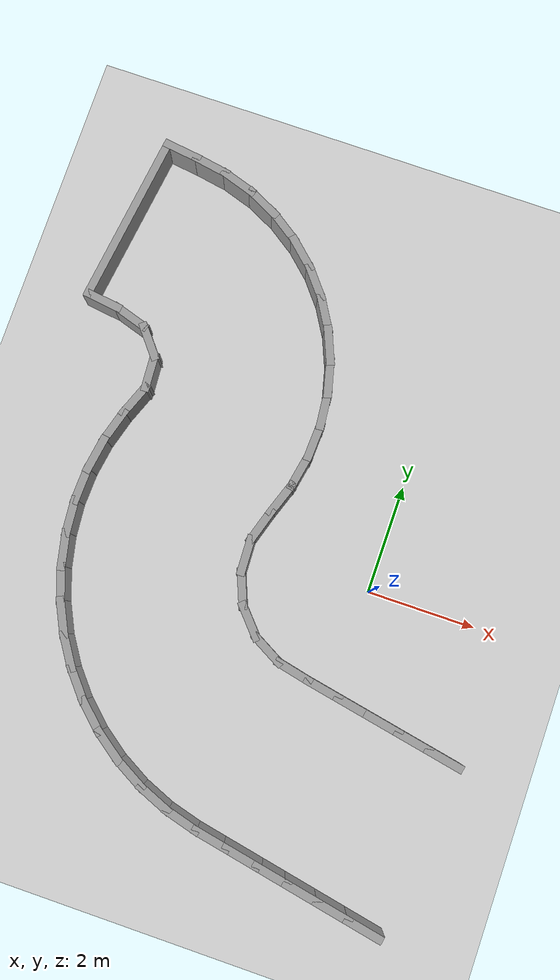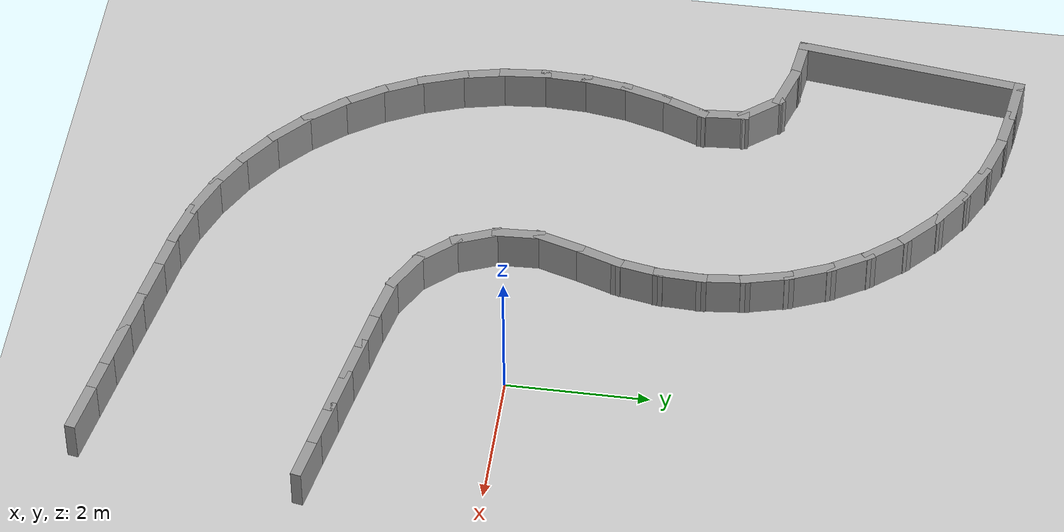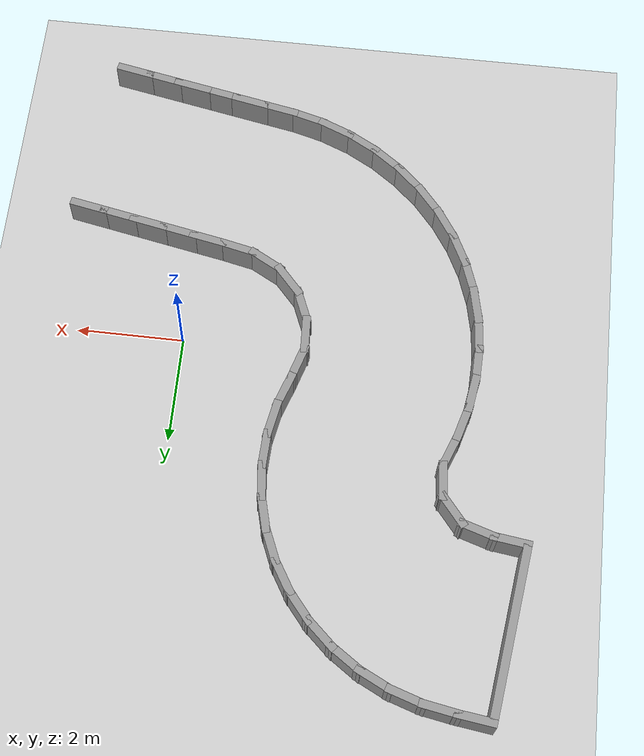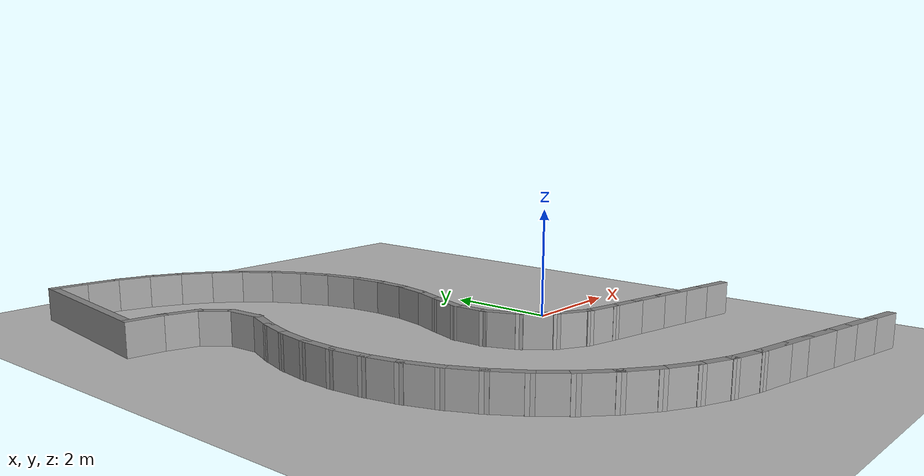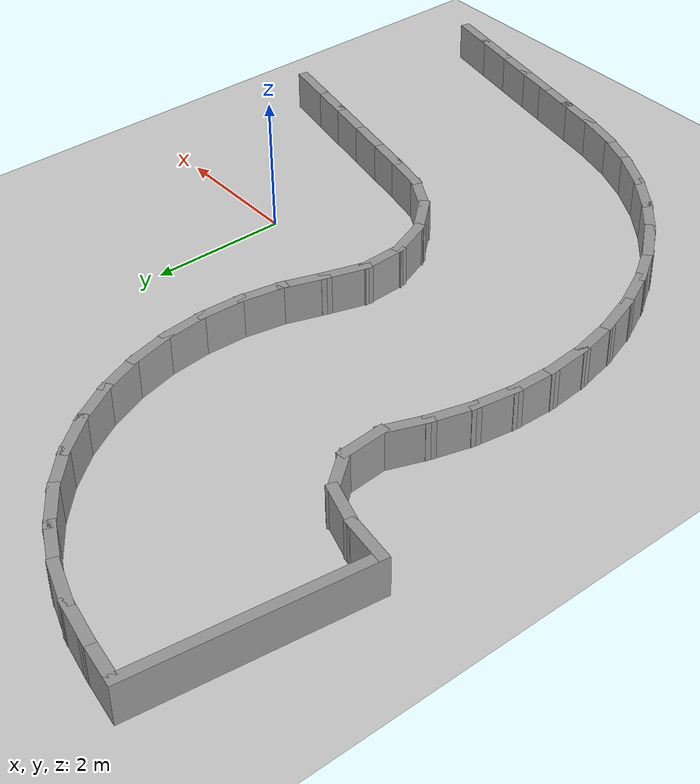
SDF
<sdf version="1.7">
 <world name="default">
  <model name="ground_plane">
   <static>1</static>
   <link name="link">
    <collision name="collision">
     <geometry><plane><normal>0 0 1</normal><size>100 100</size></plane></geometry>
     <surface><friction><ode><mu>100</mu><mu2>50</mu2></ode></friction></surface>
    </collision>
    <visual name="visual">
     <cast_shadows>0</cast_shadows>
     <geometry><plane><normal>0 0 1</normal><size>100 100</size></plane></geometry>
     <material>
      <script><uri>file://media/materials/scripts/gazebo.material</uri><name>Gazebo/Grey</name></script>
     </material>
    </visual>
   </link>
  </model>
  <model name="rand_turn_03">
   <link name="Wall_0">
    <collision name="Wall_0_Collision">
     <geometry><box><size>0.7500 0.1500 0.6000</size></box></geometry>
     <pose>0 0 0.3000 0 -0 0</pose>
    </collision>
    <visual name="Wall_0_Visual">
     <pose>0 0 0.3000 0 -0 0</pose>
     <geometry><box><size>0.7500 0.1500 0.6000</size></box></geometry>
     <material>
      <script><uri>file://media/materials/scripts/gazebo.material</uri><name>Gazebo/Grey</name></script>
      <ambient>1 1 1 1</ambient>
     </material>
    </visual>
    <pose>-5.8431 6.5450 0 0 -0 -0.13289</pose>
   </link>
   <link name="Wall_1">
    <collision name="Wall_1_Collision">
     <geometry><box><size>0.7496 0.1500 0.6000</size></box></geometry>
     <pose>0 0 0.3000 0 -0 0</pose>
    </collision>
    <visual name="Wall_1_Visual">
     <pose>0 0 0.3000 0 -0 0</pose>
     <geometry><box><size>0.7496 0.1500 0.6000</size></box></geometry>
     <material>
      <script><uri>file://media/materials/scripts/gazebo.material</uri><name>Gazebo/Grey</name></script>
      <ambient>1 1 1 1</ambient>
     </material>
    </visual>
    <pose>-5.2505 6.4534 0 0 -0 -0.17377</pose>
   </link>
   <link name="Wall_2">
    <collision name="Wall_2_Collision">
     <geometry><box><size>0.7495 0.1500 0.6000</size></box></geometry>
     <pose>0 0 0.3000 0 -0 0</pose>
    </collision>
    <visual name="Wall_2_Visual">
     <pose>0 0 0.3000 0 -0 0</pose>
     <geometry><box><size>0.7495 0.1500 0.6000</size></box></geometry>
     <material>
      <script><uri>file://media/materials/scripts/gazebo.material</uri><name>Gazebo/Grey</name></script>
      <ambient>1 1 1 1</ambient>
     </material>
    </visual>
    <pose>-4.6700 6.3094 0 0 -0 -0.31241</pose>
   </link>
   <link name="Wall_3">
    <collision name="Wall_3_Collision">
     <geometry><box><size>0.7495 0.1500 0.6000</size></box></geometry>
     <pose>0 0 0.3000 0 -0 0</pose>
    </collision>
    <visual name="Wall_3_Visual">
     <pose>0 0 0.3000 0 -0 0</pose>
     <geometry><box><size>0.7495 0.1500 0.6000</size></box></geometry>
     <material>
      <script><uri>file://media/materials/scripts/gazebo.material</uri><name>Gazebo/Grey</name></script>
      <ambient>1 1 1 1</ambient>
     </material>
    </visual>
    <pose>-4.1160 6.0845 0 0 -0 -0.45896</pose>
   </link>
   <link name="Wall_4">
    <collision name="Wall_4_Collision">
     <geometry><box><size>0.7494 0.1500 0.6000</size></box></geometry>
     <pose>0 0 0.3000 0 -0 0</pose>
    </collision>
    <visual name="Wall_4_Visual">
     <pose>0 0 0.3000 0 -0 0</pose>
     <geometry><box><size>0.7494 0.1500 0.6000</size></box></geometry>
     <material>
      <script><uri>file://media/materials/scripts/gazebo.material</uri><name>Gazebo/Grey</name></script>
      <ambient>1 1 1 1</ambient>
     </material>
    </visual>
    <pose>-3.6004 5.7819 0 0 -0 -0.60253</pose>
   </link>
   <link name="Wall_5">
    <collision name="Wall_5_Collision">
     <geometry><box><size>0.7494 0.1500 0.6000</size></box></geometry>
     <pose>0 0 0.3000 0 -0 0</pose>
    </collision>
    <visual name="Wall_5_Visual">
     <pose>0 0 0.3000 0 -0 0</pose>
     <geometry><box><size>0.7494 0.1500 0.6000</size></box></geometry>
     <material>
      <script><uri>file://media/materials/scripts/gazebo.material</uri><name>Gazebo/Grey</name></script>
      <ambient>1 1 1 1</ambient>
     </material>
    </visual>
    <pose>-3.1334 5.4086 0 0 -0 -0.74611</pose>
   </link>
   <link name="Wall_6">
    <collision name="Wall_6_Collision">
     <geometry><box><size>0.7495 0.1500 0.6000</size></box></geometry>
     <pose>0 0 0.3000 0 -0 0</pose>
    </collision>
    <visual name="Wall_6_Visual">
     <pose>0 0 0.3000 0 -0 0</pose>
     <geometry><box><size>0.7495 0.1500 0.6000</size></box></geometry>
     <material>
      <script><uri>file://media/materials/scripts/gazebo.material</uri><name>Gazebo/Grey</name></script>
      <ambient>1 1 1 1</ambient>
     </material>
    </visual>
    <pose>-2.7249 4.9720 0 0 -0 -0.89131</pose>
   </link>
   <link name="Wall_7">
    <collision name="Wall_7_Collision">
     <geometry><box><size>0.7494 0.1500 0.6000</size></box></geometry>
     <pose>0 0 0.3000 0 -0 0</pose>
    </collision>
    <visual name="Wall_7_Visual">
     <pose>0 0 0.3000 0 -0 0</pose>
     <geometry><box><size>0.7494 0.1500 0.6000</size></box></geometry>
     <material>
      <script><uri>file://media/materials/scripts/gazebo.material</uri><name>Gazebo/Grey</name></script>
      <ambient>1 1 1 1</ambient>
     </material>
    </visual>
    <pose>-2.3839 4.4809 0 0 -0 -1.03627</pose>
   </link>
   <link name="Wall_8">
    <collision name="Wall_8_Collision">
     <geometry><box><size>0.7494 0.1500 0.6000</size></box></geometry>
     <pose>0 0 0.3000 0 -0 0</pose>
    </collision>
    <visual name="Wall_8_Visual">
     <pose>0 0 0.3000 0 -0 0</pose>
     <geometry><box><size>0.7494 0.1500 0.6000</size></box></geometry>
     <material>
      <script><uri>file://media/materials/scripts/gazebo.material</uri><name>Gazebo/Grey</name></script>
      <ambient>1 1 1 1</ambient>
     </material>
    </visual>
    <pose>-2.1170 3.9459 0 0 -0 -1.17985</pose>
   </link>
   <link name="Wall_9">
    <collision name="Wall_9_Collision">
     <geometry><box><size>0.7495 0.1500 0.6000</size></box></geometry>
     <pose>0 0 0.3000 0 -0 0</pose>
    </collision>
    <visual name="Wall_9_Visual">
     <pose>0 0 0.3000 0 -0 0</pose>
     <geometry><box><size>0.7495 0.1500 0.6000</size></box></geometry>
     <material>
      <script><uri>file://media/materials/scripts/gazebo.material</uri><name>Gazebo/Grey</name></script>
      <ambient>1 1 1 1</ambient>
     </material>
    </visual>
    <pose>-1.9295 3.3782 0 0 -0 -1.32363</pose>
   </link>
   <link name="Wall_10">
    <collision name="Wall_10_Collision">
     <geometry><box><size>0.7495 0.1500 0.6000</size></box></geometry>
     <pose>0 0 0.3000 0 -0 0</pose>
    </collision>
    <visual name="Wall_10_Visual">
     <pose>0 0 0.3000 0 -0 0</pose>
     <geometry><box><size>0.7495 0.1500 0.6000</size></box></geometry>
     <material>
      <script><uri>file://media/materials/scripts/gazebo.material</uri><name>Gazebo/Grey</name></script>
      <ambient>1 1 1 1</ambient>
     </material>
    </visual>
    <pose>-1.8260 2.7894 0 0 -0 -1.47002</pose>
   </link>
   <link name="Wall_11">
    <collision name="Wall_11_Collision">
     <geometry><box><size>0.7494 0.1500 0.6000</size></box></geometry>
     <pose>0 0 0.3000 0 -0 0</pose>
    </collision>
    <visual name="Wall_11_Visual">
     <pose>0 0 0.3000 0 -0 0</pose>
     <geometry><box><size>0.7494 0.1500 0.6000</size></box></geometry>
     <material>
      <script><uri>file://media/materials/scripts/gazebo.material</uri><name>Gazebo/Grey</name></script>
      <ambient>1 1 1 1</ambient>
     </material>
    </visual>
    <pose>-1.8086 2.1917 0 0 -0 -1.61359</pose>
   </link>
   <link name="Wall_12">
    <collision name="Wall_12_Collision">
     <geometry><box><size>0.7494 0.1500 0.6000</size></box></geometry>
     <pose>0 0 0.3000 0 -0 0</pose>
    </collision>
    <visual name="Wall_12_Visual">
     <pose>0 0 0.3000 0 -0 0</pose>
     <geometry><box><size>0.7494 0.1500 0.6000</size></box></geometry>
     <material>
      <script><uri>file://media/materials/scripts/gazebo.material</uri><name>Gazebo/Grey</name></script>
      <ambient>1 1 1 1</ambient>
     </material>
    </visual>
    <pose>-1.8770 1.5978 0 0 -0 -1.75717</pose>
   </link>
   <link name="Wall_13">
    <collision name="Wall_13_Collision">
     <geometry><box><size>0.7495 0.1500 0.6000</size></box></geometry>
     <pose>0 0 0.3000 0 -0 0</pose>
    </collision>
    <visual name="Wall_13_Visual">
     <pose>0 0 0.3000 0 -0 0</pose>
     <geometry><box><size>0.7495 0.1500 0.6000</size></box></geometry>
     <material>
      <script><uri>file://media/materials/scripts/gazebo.material</uri><name>Gazebo/Grey</name></script>
      <ambient>1 1 1 1</ambient>
     </material>
    </visual>
    <pose>-2.0301 1.0198 0 0 -0 -1.90234</pose>
   </link>
   <link name="Wall_14">
    <collision name="Wall_14_Collision">
     <geometry><box><size>0.7475 0.1500 0.6000</size></box></geometry>
     <pose>0 0 0.3000 0 -0 0</pose>
    </collision>
    <visual name="Wall_14_Visual">
     <pose>0 0 0.3000 0 -0 0</pose>
     <geometry><box><size>0.7475 0.1500 0.6000</size></box></geometry>
     <material>
      <script><uri>file://media/materials/scripts/gazebo.material</uri><name>Gazebo/Grey</name></script>
      <ambient>1 1 1 1</ambient>
     </material>
    </visual>
    <pose>-2.2151 0.4508 0 0 -0 -1.86774</pose>
   </link>
   <link name="Wall_15">
    <collision name="Wall_15_Collision">
     <geometry><box><size>0.7470 0.1500 0.6000</size></box></geometry>
     <pose>0 0 0.3000 0 -0 0</pose>
    </collision>
    <visual name="Wall_15_Visual">
     <pose>0 0 0.3000 0 -0 0</pose>
     <geometry><box><size>0.7470 0.1500 0.6000</size></box></geometry>
     <material>
      <script><uri>file://media/materials/scripts/gazebo.material</uri><name>Gazebo/Grey</name></script>
      <ambient>1 1 1 1</ambient>
     </material>
    </visual>
    <pose>-2.2903 -0.1332 0 0 -0 -1.53006</pose>
   </link>
   <link name="Wall_16">
    <collision name="Wall_16_Collision">
     <geometry><box><size>0.7471 0.1500 0.6000</size></box></geometry>
     <pose>0 0 0.3000 0 -0 0</pose>
    </collision>
    <visual name="Wall_16_Visual">
     <pose>0 0 0.3000 0 -0 0</pose>
     <geometry><box><size>0.7471 0.1500 0.6000</size></box></geometry>
     <material>
      <script><uri>file://media/materials/scripts/gazebo.material</uri><name>Gazebo/Grey</name></script>
      <ambient>1 1 1 1</ambient>
     </material>
    </visual>
    <pose>-2.1667 -0.7084 0 0 -0 -1.18807</pose>
   </link>
   <link name="Wall_17">
    <collision name="Wall_17_Collision">
     <geometry><box><size>0.7471 0.1500 0.6000</size></box></geometry>
     <pose>0 0 0.3000 0 -0 0</pose>
    </collision>
    <visual name="Wall_17_Visual">
     <pose>0 0 0.3000 0 -0 0</pose>
     <geometry><box><size>0.7471 0.1500 0.6000</size></box></geometry>
     <material>
      <script><uri>file://media/materials/scripts/gazebo.material</uri><name>Gazebo/Grey</name></script>
      <ambient>1 1 1 1</ambient>
     </material>
    </visual>
    <pose>-1.8571 -1.2086 0 0 -0 -0.84501</pose>
   </link>
   <link name="Wall_18">
    <collision name="Wall_18_Collision">
     <geometry><box><size>0.7470 0.1500 0.6000</size></box></geometry>
     <pose>0 0 0.3000 0 -0 0</pose>
    </collision>
    <visual name="Wall_18_Visual">
     <pose>0 0 0.3000 0 -0 0</pose>
     <geometry><box><size>0.7470 0.1500 0.6000</size></box></geometry>
     <material>
      <script><uri>file://media/materials/scripts/gazebo.material</uri><name>Gazebo/Grey</name></script>
      <ambient>1 1 1 1</ambient>
     </material>
    </visual>
    <pose>-1.3974 -1.5758 0 0 -0 -0.50304</pose>
   </link>
   <link name="Wall_19">
    <collision name="Wall_19_Collision">
     <geometry><box><size>0.7494 0.1500 0.6000</size></box></geometry>
     <pose>0 0 0.3000 0 -0 0</pose>
    </collision>
    <visual name="Wall_19_Visual">
     <pose>0 0 0.3000 0 -0 0</pose>
     <geometry><box><size>0.7494 0.1500 0.6000</size></box></geometry>
     <material>
      <script><uri>file://media/materials/scripts/gazebo.material</uri><name>Gazebo/Grey</name></script>
      <ambient>1 1 1 1</ambient>
     </material>
    </visual>
    <pose>-0.8433 -1.7849 0 0 -0 -0.21916</pose>
   </link>
   <link name="Wall_20">
    <collision name="Wall_20_Collision">
     <geometry><box><size>0.7500 0.1500 0.6000</size></box></geometry>
     <pose>0 0 0.3000 0 -0 0</pose>
    </collision>
    <visual name="Wall_20_Visual">
     <pose>0 0 0.3000 0 -0 0</pose>
     <geometry><box><size>0.7500 0.1500 0.6000</size></box></geometry>
     <material>
      <script><uri>file://media/materials/scripts/gazebo.material</uri><name>Gazebo/Grey</name></script>
      <ambient>1 1 1 1</ambient>
     </material>
    </visual>
    <pose>-0.2562 -1.9070 0 0 -0 -0.19083</pose>
   </link>
   <link name="Wall_21">
    <collision name="Wall_21_Collision">
     <geometry><box><size>0.7500 0.1500 0.6000</size></box></geometry>
     <pose>0 0 0.3000 0 -0 0</pose>
    </collision>
    <visual name="Wall_21_Visual">
     <pose>0 0 0.3000 0 -0 0</pose>
     <geometry><box><size>0.7500 0.1500 0.6000</size></box></geometry>
     <material>
      <script><uri>file://media/materials/scripts/gazebo.material</uri><name>Gazebo/Grey</name></script>
      <ambient>1 1 1 1</ambient>
     </material>
    </visual>
    <pose>0.3329 -2.0208 0 0 -0 -0.19083</pose>
   </link>
   <link name="Wall_22">
    <collision name="Wall_22_Collision">
     <geometry><box><size>0.7500 0.1500 0.6000</size></box></geometry>
     <pose>0 0 0.3000 0 -0 0</pose>
    </collision>
    <visual name="Wall_22_Visual">
     <pose>0 0 0.3000 0 -0 0</pose>
     <geometry><box><size>0.7500 0.1500 0.6000</size></box></geometry>
     <material>
      <script><uri>file://media/materials/scripts/gazebo.material</uri><name>Gazebo/Grey</name></script>
      <ambient>1 1 1 1</ambient>
     </material>
    </visual>
    <pose>0.9220 -2.1346 0 0 -0 -0.19083</pose>
   </link>
   <link name="Wall_23">
    <collision name="Wall_23_Collision">
     <geometry><box><size>0.7500 0.1500 0.6000</size></box></geometry>
     <pose>0 0 0.3000 0 -0 0</pose>
    </collision>
    <visual name="Wall_23_Visual">
     <pose>0 0 0.3000 0 -0 0</pose>
     <geometry><box><size>0.7500 0.1500 0.6000</size></box></geometry>
     <material>
      <script><uri>file://media/materials/scripts/gazebo.material</uri><name>Gazebo/Grey</name></script>
      <ambient>1 1 1 1</ambient>
     </material>
    </visual>
    <pose>1.5111 -2.2484 0 0 -0 -0.19083</pose>
   </link>
   <link name="Wall_24">
    <collision name="Wall_24_Collision">
     <geometry><box><size>0.7500 0.1500 0.6000</size></box></geometry>
     <pose>0 0 0.3000 0 -0 0</pose>
    </collision>
    <visual name="Wall_24_Visual">
     <pose>0 0 0.3000 0 -0 0</pose>
     <geometry><box><size>0.7500 0.1500 0.6000</size></box></geometry>
     <material>
      <script><uri>file://media/materials/scripts/gazebo.material</uri><name>Gazebo/Grey</name></script>
      <ambient>1 1 1 1</ambient>
     </material>
    </visual>
    <pose>2.1002 -2.3622 0 0 -0 -0.19083</pose>
   </link>
   <link name="Wall_41">
    <collision name="Wall_41_Collision">
     <geometry><box><size>0.7500 0.1500 0.6000</size></box></geometry>
     <pose>0 0 0.3000 0 -0 0</pose>
    </collision>
    <visual name="Wall_41_Visual">
     <pose>0 0 0.3000 0 -0 0</pose>
     <geometry><box><size>0.7500 0.1500 0.6000</size></box></geometry>
     <material>
      <script><uri>file://media/materials/scripts/gazebo.material</uri><name>Gazebo/Grey</name></script>
      <ambient>1 1 1 1</ambient>
     </material>
    </visual>
    <pose>-6.2629 3.4045 0 0 -0 -0.13289</pose>
   </link>
   <link name="Wall_42">
    <collision name="Wall_42_Collision">
     <geometry><box><size>0.7431 0.1500 0.6000</size></box></geometry>
     <pose>0 0 0.3000 0 -0 0</pose>
    </collision>
    <visual name="Wall_42_Visual">
     <pose>0 0 0.3000 0 -0 0</pose>
     <geometry><box><size>0.7431 0.1500 0.6000</size></box></geometry>
     <material>
      <script><uri>file://media/materials/scripts/gazebo.material</uri><name>Gazebo/Grey</name></script>
      <ambient>1 1 1 1</ambient>
     </material>
    </visual>
    <pose>-5.6826 3.2762 0 0 -0 -0.30333</pose>
   </link>
   <link name="Wall_43">
    <collision name="Wall_43_Collision">
     <geometry><box><size>0.7408 0.1500 0.6000</size></box></geometry>
     <pose>0 0 0.3000 0 -0 0</pose>
    </collision>
    <visual name="Wall_43_Visual">
     <pose>0 0 0.3000 0 -0 0</pose>
     <geometry><box><size>0.7408 0.1500 0.6000</size></box></geometry>
     <material>
      <script><uri>file://media/materials/scripts/gazebo.material</uri><name>Gazebo/Grey</name></script>
      <ambient>1 1 1 1</ambient>
     </material>
    </visual>
    <pose>-5.2145 2.9574 0 0 -0 -0.89374</pose>
   </link>
   <link name="Wall_44">
    <collision name="Wall_44_Collision">
     <geometry><box><size>0.7407 0.1500 0.6000</size></box></geometry>
     <pose>0 0 0.3000 0 -0 0</pose>
    </collision>
    <visual name="Wall_44_Visual">
     <pose>0 0 0.3000 0 -0 0</pose>
     <geometry><box><size>0.7407 0.1500 0.6000</size></box></geometry>
     <material>
      <script><uri>file://media/materials/scripts/gazebo.material</uri><name>Gazebo/Grey</name></script>
      <ambient>1 1 1 1</ambient>
     </material>
    </visual>
    <pose>-5.0094 2.4325 0 0 -0 -1.50274</pose>
   </link>
   <link name="Wall_45">
    <collision name="Wall_45_Collision">
     <geometry><box><size>0.7494 0.1500 0.6000</size></box></geometry>
     <pose>0 0 0.3000 0 -0 0</pose>
    </collision>
    <visual name="Wall_45_Visual">
     <pose>0 0 0.3000 0 -0 0</pose>
     <geometry><box><size>0.7494 0.1500 0.6000</size></box></geometry>
     <material>
      <script><uri>file://media/materials/scripts/gazebo.material</uri><name>Gazebo/Grey</name></script>
      <ambient>1 1 1 1</ambient>
     </material>
    </visual>
    <pose>-5.0966 1.8579 0 0 -0 -1.93685</pose>
   </link>
   <link name="Wall_46">
    <collision name="Wall_46_Collision">
     <geometry><box><size>0.7496 0.1500 0.6000</size></box></geometry>
     <pose>0 0 0.3000 0 -0 0</pose>
    </collision>
    <visual name="Wall_46_Visual">
     <pose>0 0 0.3000 0 -0 0</pose>
     <geometry><box><size>0.7496 0.1500 0.6000</size></box></geometry>
     <material>
      <script><uri>file://media/materials/scripts/gazebo.material</uri><name>Gazebo/Grey</name></script>
      <ambient>1 1 1 1</ambient>
     </material>
    </visual>
    <pose>-5.2864 1.2899 0 0 -0 -1.84975</pose>
   </link>
   <link name="Wall_47">
    <collision name="Wall_47_Collision">
     <geometry><box><size>0.7496 0.1500 0.6000</size></box></geometry>
     <pose>0 0 0.3000 0 -0 0</pose>
    </collision>
    <visual name="Wall_47_Visual">
     <pose>0 0 0.3000 0 -0 0</pose>
     <geometry><box><size>0.7496 0.1500 0.6000</size></box></geometry>
     <material>
      <script><uri>file://media/materials/scripts/gazebo.material</uri><name>Gazebo/Grey</name></script>
      <ambient>1 1 1 1</ambient>
     </material>
    </visual>
    <pose>-5.4158 0.7055 0 0 -0 -1.72784</pose>
   </link>
   <link name="Wall_48">
    <collision name="Wall_48_Collision">
     <geometry><box><size>0.7496 0.1500 0.6000</size></box></geometry>
     <pose>0 0 0.3000 0 -0 0</pose>
    </collision>
    <visual name="Wall_48_Visual">
     <pose>0 0 0.3000 0 -0 0</pose>
     <geometry><box><size>0.7496 0.1500 0.6000</size></box></geometry>
     <material>
      <script><uri>file://media/materials/scripts/gazebo.material</uri><name>Gazebo/Grey</name></script>
      <ambient>1 1 1 1</ambient>
     </material>
    </visual>
    <pose>-5.4733 0.1098 0 0 -0 -1.60594</pose>
   </link>
   <link name="Wall_49">
    <collision name="Wall_49_Collision">
     <geometry><box><size>0.7496 0.1500 0.6000</size></box></geometry>
     <pose>0 0 0.3000 0 -0 0</pose>
    </collision>
    <visual name="Wall_49_Visual">
     <pose>0 0 0.3000 0 -0 0</pose>
     <geometry><box><size>0.7496 0.1500 0.6000</size></box></geometry>
     <material>
      <script><uri>file://media/materials/scripts/gazebo.material</uri><name>Gazebo/Grey</name></script>
      <ambient>1 1 1 1</ambient>
     </material>
    </visual>
    <pose>-5.4578 -0.4885 0 0 -0 -1.48403</pose>
   </link>
   <link name="Wall_50">
    <collision name="Wall_50_Collision">
     <geometry><box><size>0.7496 0.1500 0.6000</size></box></geometry>
     <pose>0 0 0.3000 0 -0 0</pose>
    </collision>
    <visual name="Wall_50_Visual">
     <pose>0 0 0.3000 0 -0 0</pose>
     <geometry><box><size>0.7496 0.1500 0.6000</size></box></geometry>
     <material>
      <script><uri>file://media/materials/scripts/gazebo.material</uri><name>Gazebo/Grey</name></script>
      <ambient>1 1 1 1</ambient>
     </material>
    </visual>
    <pose>-5.3697 -1.0804 0 0 -0 -1.36213</pose>
   </link>
   <link name="Wall_51">
    <collision name="Wall_51_Collision">
     <geometry><box><size>0.7496 0.1500 0.6000</size></box></geometry>
     <pose>0 0 0.3000 0 -0 0</pose>
    </collision>
    <visual name="Wall_51_Visual">
     <pose>0 0 0.3000 0 -0 0</pose>
     <geometry><box><size>0.7496 0.1500 0.6000</size></box></geometry>
     <material>
      <script><uri>file://media/materials/scripts/gazebo.material</uri><name>Gazebo/Grey</name></script>
      <ambient>1 1 1 1</ambient>
     </material>
    </visual>
    <pose>-5.2103 -1.6573 0 0 -0 -1.24022</pose>
   </link>
   <link name="Wall_52">
    <collision name="Wall_52_Collision">
     <geometry><box><size>0.7496 0.1500 0.6000</size></box></geometry>
     <pose>0 0 0.3000 0 -0 0</pose>
    </collision>
    <visual name="Wall_52_Visual">
     <pose>0 0 0.3000 0 -0 0</pose>
     <geometry><box><size>0.7496 0.1500 0.6000</size></box></geometry>
     <material>
      <script><uri>file://media/materials/scripts/gazebo.material</uri><name>Gazebo/Grey</name></script>
      <ambient>1 1 1 1</ambient>
     </material>
    </visual>
    <pose>-4.9819 -2.2104 0 0 -0 -1.11831</pose>
   </link>
   <link name="Wall_53">
    <collision name="Wall_53_Collision">
     <geometry><box><size>0.7496 0.1500 0.6000</size></box></geometry>
     <pose>0 0 0.3000 0 -0 0</pose>
    </collision>
    <visual name="Wall_53_Visual">
     <pose>0 0 0.3000 0 -0 0</pose>
     <geometry><box><size>0.7496 0.1500 0.6000</size></box></geometry>
     <material>
      <script><uri>file://media/materials/scripts/gazebo.material</uri><name>Gazebo/Grey</name></script>
      <ambient>1 1 1 1</ambient>
     </material>
    </visual>
    <pose>-4.6880 -2.7317 0 0 -0 -0.99641</pose>
   </link>
   <link name="Wall_54">
    <collision name="Wall_54_Collision">
     <geometry><box><size>0.7496 0.1500 0.6000</size></box></geometry>
     <pose>0 0 0.3000 0 -0 0</pose>
    </collision>
    <visual name="Wall_54_Visual">
     <pose>0 0 0.3000 0 -0 0</pose>
     <geometry><box><size>0.7496 0.1500 0.6000</size></box></geometry>
     <material>
      <script><uri>file://media/materials/scripts/gazebo.material</uri><name>Gazebo/Grey</name></script>
      <ambient>1 1 1 1</ambient>
     </material>
    </visual>
    <pose>-4.3328 -3.2135 0 0 -0 -0.87450</pose>
   </link>
   <link name="Wall_55">
    <collision name="Wall_55_Collision">
     <geometry><box><size>0.7496 0.1500 0.6000</size></box></geometry>
     <pose>0 0 0.3000 0 -0 0</pose>
    </collision>
    <visual name="Wall_55_Visual">
     <pose>0 0 0.3000 0 -0 0</pose>
     <geometry><box><size>0.7496 0.1500 0.6000</size></box></geometry>
     <material>
      <script><uri>file://media/materials/scripts/gazebo.material</uri><name>Gazebo/Grey</name></script>
      <ambient>1 1 1 1</ambient>
     </material>
    </visual>
    <pose>-3.9217 -3.6484 0 0 -0 -0.75259</pose>
   </link>
   <link name="Wall_56">
    <collision name="Wall_56_Collision">
     <geometry><box><size>0.7496 0.1500 0.6000</size></box></geometry>
     <pose>0 0 0.3000 0 -0 0</pose>
    </collision>
    <visual name="Wall_56_Visual">
     <pose>0 0 0.3000 0 -0 0</pose>
     <geometry><box><size>0.7496 0.1500 0.6000</size></box></geometry>
     <material>
      <script><uri>file://media/materials/scripts/gazebo.material</uri><name>Gazebo/Grey</name></script>
      <ambient>1 1 1 1</ambient>
     </material>
    </visual>
    <pose>-3.4607 -4.0301 0 0 -0 -0.63069</pose>
   </link>
   <link name="Wall_57">
    <collision name="Wall_57_Collision">
     <geometry><box><size>0.7496 0.1500 0.6000</size></box></geometry>
     <pose>0 0 0.3000 0 -0 0</pose>
    </collision>
    <visual name="Wall_57_Visual">
     <pose>0 0 0.3000 0 -0 0</pose>
     <geometry><box><size>0.7496 0.1500 0.6000</size></box></geometry>
     <material>
      <script><uri>file://media/materials/scripts/gazebo.material</uri><name>Gazebo/Grey</name></script>
      <ambient>1 1 1 1</ambient>
     </material>
    </visual>
    <pose>-2.9567 -4.3530 0 0 -0 -0.50878</pose>
   </link>
   <link name="Wall_58">
    <collision name="Wall_58_Collision">
     <geometry><box><size>0.7496 0.1500 0.6000</size></box></geometry>
     <pose>0 0 0.3000 0 -0 0</pose>
    </collision>
    <visual name="Wall_58_Visual">
     <pose>0 0 0.3000 0 -0 0</pose>
     <geometry><box><size>0.7496 0.1500 0.6000</size></box></geometry>
     <material>
      <script><uri>file://media/materials/scripts/gazebo.material</uri><name>Gazebo/Grey</name></script>
      <ambient>1 1 1 1</ambient>
     </material>
    </visual>
    <pose>-2.4172 -4.6120 0 0 -0 -0.38645</pose>
   </link>
   <link name="Wall_59">
    <collision name="Wall_59_Collision">
     <geometry><box><size>0.7496 0.1500 0.6000</size></box></geometry>
     <pose>0 0 0.3000 0 -0 0</pose>
    </collision>
    <visual name="Wall_59_Visual">
     <pose>0 0 0.3000 0 -0 0</pose>
     <geometry><box><size>0.7496 0.1500 0.6000</size></box></geometry>
     <material>
      <script><uri>file://media/materials/scripts/gazebo.material</uri><name>Gazebo/Grey</name></script>
      <ambient>1 1 1 1</ambient>
     </material>
    </visual>
    <pose>-1.8501 -4.8034 0 0 -0 -0.26450</pose>
   </link>
   <link name="Wall_60">
    <collision name="Wall_60_Collision">
     <geometry><box><size>0.7500 0.1500 0.6000</size></box></geometry>
     <pose>0 0 0.3000 0 -0 0</pose>
    </collision>
    <visual name="Wall_60_Visual">
     <pose>0 0 0.3000 0 -0 0</pose>
     <geometry><box><size>0.7500 0.1500 0.6000</size></box></geometry>
     <material>
      <script><uri>file://media/materials/scripts/gazebo.material</uri><name>Gazebo/Grey</name></script>
      <ambient>1 1 1 1</ambient>
     </material>
    </visual>
    <pose>-1.2662 -4.9388 0 0 -0 -0.19112</pose>
   </link>
   <link name="Wall_61">
    <collision name="Wall_61_Collision">
     <geometry><box><size>0.7500 0.1500 0.6000</size></box></geometry>
     <pose>0 0 0.3000 0 -0 0</pose>
    </collision>
    <visual name="Wall_61_Visual">
     <pose>0 0 0.3000 0 -0 0</pose>
     <geometry><box><size>0.7500 0.1500 0.6000</size></box></geometry>
     <material>
      <script><uri>file://media/materials/scripts/gazebo.material</uri><name>Gazebo/Grey</name></script>
      <ambient>1 1 1 1</ambient>
     </material>
    </visual>
    <pose>-0.6771 -5.0526 0 0 -0 -0.19083</pose>
   </link>
   <link name="Wall_62">
    <collision name="Wall_62_Collision">
     <geometry><box><size>0.7500 0.1500 0.6000</size></box></geometry>
     <pose>0 0 0.3000 0 -0 0</pose>
    </collision>
    <visual name="Wall_62_Visual">
     <pose>0 0 0.3000 0 -0 0</pose>
     <geometry><box><size>0.7500 0.1500 0.6000</size></box></geometry>
     <material>
      <script><uri>file://media/materials/scripts/gazebo.material</uri><name>Gazebo/Grey</name></script>
      <ambient>1 1 1 1</ambient>
     </material>
    </visual>
    <pose>-0.0880 -5.1665 0 0 -0 -0.19083</pose>
   </link>
   <link name="Wall_63">
    <collision name="Wall_63_Collision">
     <geometry><box><size>0.7500 0.1500 0.6000</size></box></geometry>
     <pose>0 0 0.3000 0 -0 0</pose>
    </collision>
    <visual name="Wall_63_Visual">
     <pose>0 0 0.3000 0 -0 0</pose>
     <geometry><box><size>0.7500 0.1500 0.6000</size></box></geometry>
     <material>
      <script><uri>file://media/materials/scripts/gazebo.material</uri><name>Gazebo/Grey</name></script>
      <ambient>1 1 1 1</ambient>
     </material>
    </visual>
    <pose>0.5011 -5.2803 0 0 -0 -0.19083</pose>
   </link>
   <link name="Wall_64">
    <collision name="Wall_64_Collision">
     <geometry><box><size>0.7500 0.1500 0.6000</size></box></geometry>
     <pose>0 0 0.3000 0 -0 0</pose>
    </collision>
    <visual name="Wall_64_Visual">
     <pose>0 0 0.3000 0 -0 0</pose>
     <geometry><box><size>0.7500 0.1500 0.6000</size></box></geometry>
     <material>
      <script><uri>file://media/materials/scripts/gazebo.material</uri><name>Gazebo/Grey</name></script>
      <ambient>1 1 1 1</ambient>
     </material>
    </visual>
    <pose>1.0902 -5.3941 0 0 -0 -0.19083</pose>
   </link>
   <link name="Wall_65">
    <collision name="Wall_65_Collision">
     <geometry><box><size>0.7500 0.1500 0.6000</size></box></geometry>
     <pose>0 0 0.3000 0 -0 0</pose>
    </collision>
    <visual name="Wall_65_Visual">
     <pose>0 0 0.3000 0 -0 0</pose>
     <geometry><box><size>0.7500 0.1500 0.6000</size></box></geometry>
     <material>
      <script><uri>file://media/materials/scripts/gazebo.material</uri><name>Gazebo/Grey</name></script>
      <ambient>1 1 1 1</ambient>
     </material>
    </visual>
    <pose>1.6794 -5.5079 0 0 -0 -0.19083</pose>
   </link>
   <link name="Wall_100">
    <collision name="Wall_100_Collision">
     <geometry><box><size>3.3184 0.1500 0.6000</size></box></geometry>
     <pose>0 0 0.3000 0 -0 0</pose>
    </collision>
    <visual name="Wall_100_Visual">
     <pose>0 0 0.3000 0 -0 0</pose>
     <geometry><box><size>3.3184 0.1500 0.6000</size></box></geometry>
     <material>
      <script><uri>file://media/materials/scripts/gazebo.material</uri><name>Gazebo/Grey</name></script>
      <ambient>1 1 1 1</ambient>
     </material>
    </visual>
    <pose>-6.3504 5.0145 0 0 -0 1.43790</pose>
   </link>
   <static>1</static>
  </model>
 </world>
</sdf>
